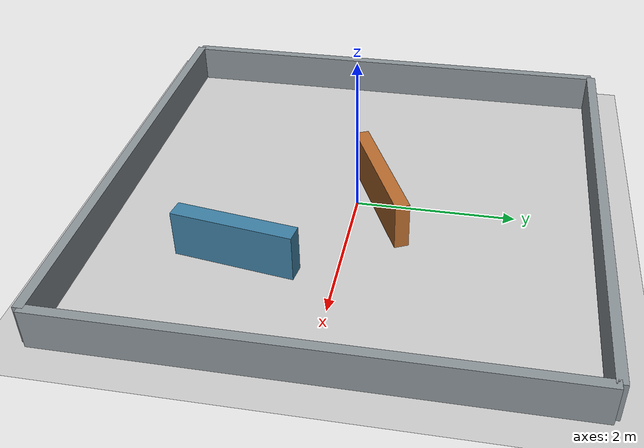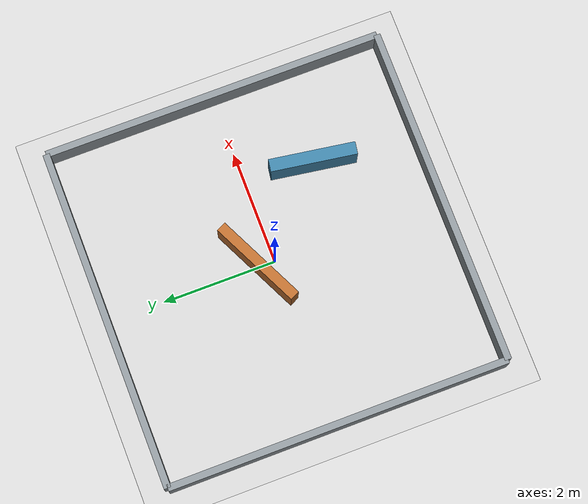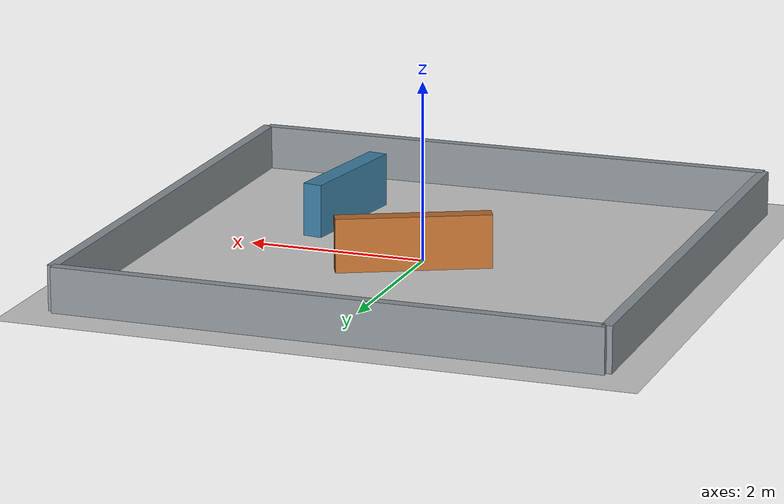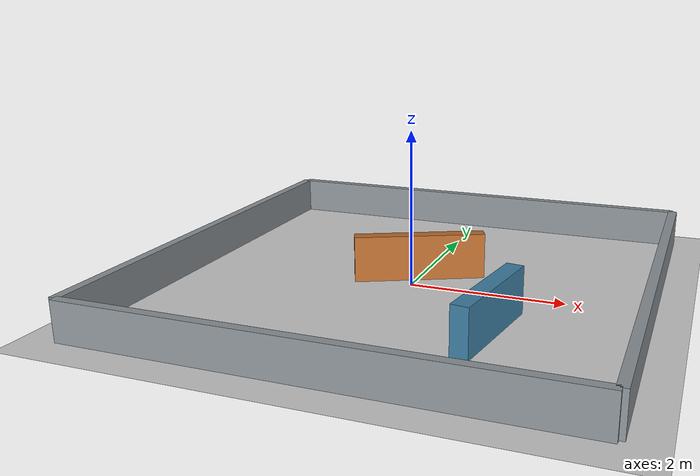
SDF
<?xml version="1.0"?>
<sdf version="1.6">
  <world name="ab_navigation">
    <gravity>0 0 -9.8</gravity>
    <magnetic_field>6.0e-06 2.3e-05 -4.2e-05</magnetic_field>
    <atmosphere type="adiabatic"/>
    <physics name="default_physics" type="ode">
      <max_step_size>0.001</max_step_size>
      <real_time_factor>1.0</real_time_factor>
      <real_time_update_rate>1000</real_time_update_rate>
    </physics>

    <include>
      <uri>model://sun</uri>
    </include>
    <include>
      <uri>model://ground_plane</uri>
    </include>

    <model name="north_wall">
      <static>true</static>
      <pose>0 3.0 0.25 0 0 0</pose>
      <link name="link">
        <collision name="collision">
          <geometry><box><size>6.0 0.12 0.5</size></box></geometry>
        </collision>
        <visual name="visual">
          <geometry><box><size>6.0 0.12 0.5</size></box></geometry>
          <material><ambient>0.55 0.58 0.60 1</ambient></material>
        </visual>
      </link>
    </model>

    <model name="south_wall">
      <static>true</static>
      <pose>0 -3.0 0.25 0 0 0</pose>
      <link name="link">
        <collision name="collision">
          <geometry><box><size>6.0 0.12 0.5</size></box></geometry>
        </collision>
        <visual name="visual">
          <geometry><box><size>6.0 0.12 0.5</size></box></geometry>
          <material><ambient>0.55 0.58 0.60 1</ambient></material>
        </visual>
      </link>
    </model>

    <model name="east_wall">
      <static>true</static>
      <pose>3.0 0 0.25 0 0 0</pose>
      <link name="link">
        <collision name="collision">
          <geometry><box><size>0.12 6.0 0.5</size></box></geometry>
        </collision>
        <visual name="visual">
          <geometry><box><size>0.12 6.0 0.5</size></box></geometry>
          <material><ambient>0.55 0.58 0.60 1</ambient></material>
        </visual>
      </link>
    </model>

    <model name="west_wall">
      <static>true</static>
      <pose>-3.0 0 0.25 0 0 0</pose>
      <link name="link">
        <collision name="collision">
          <geometry><box><size>0.12 6.0 0.5</size></box></geometry>
        </collision>
        <visual name="visual">
          <geometry><box><size>0.12 6.0 0.5</size></box></geometry>
          <material><ambient>0.55 0.58 0.60 1</ambient></material>
        </visual>
      </link>
    </model>

    <model name="center_barrier">
      <static>true</static>
      <pose>0.0 0.3 0.3 0 0 0.45</pose>
      <link name="link">
        <collision name="collision">
          <geometry><box><size>1.7 0.18 0.6</size></box></geometry>
        </collision>
        <visual name="visual">
          <geometry><box><size>1.7 0.18 0.6</size></box></geometry>
          <material><ambient>0.72 0.42 0.18 1</ambient></material>
        </visual>
      </link>
    </model>

    <model name="side_barrier">
      <static>true</static>
      <pose>1.35 -1.2 0.3 0 0 -0.15</pose>
      <link name="link">
        <collision name="collision">
          <geometry><box><size>0.22 1.5 0.6</size></box></geometry>
        </collision>
        <visual name="visual">
          <geometry><box><size>0.22 1.5 0.6</size></box></geometry>
          <material><ambient>0.24 0.50 0.64 1</ambient></material>
        </visual>
      </link>
    </model>
  </world>
</sdf>
